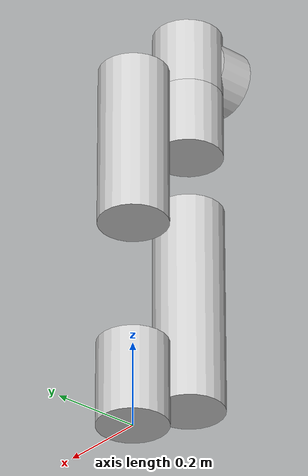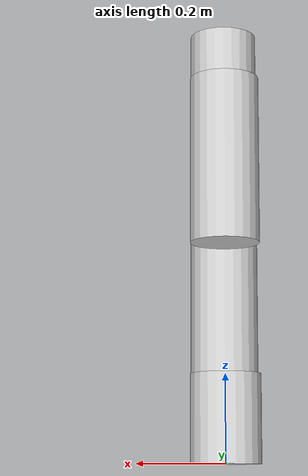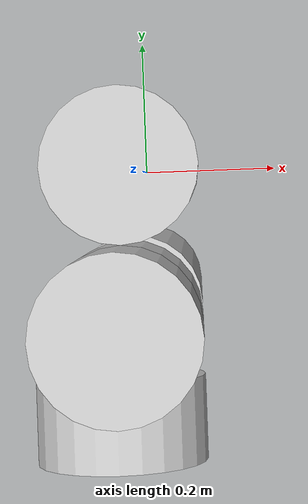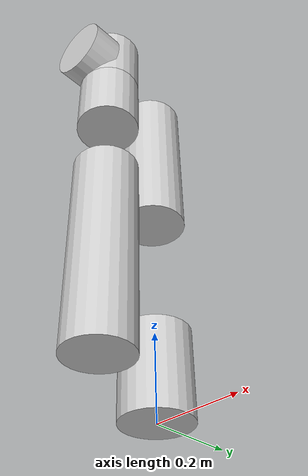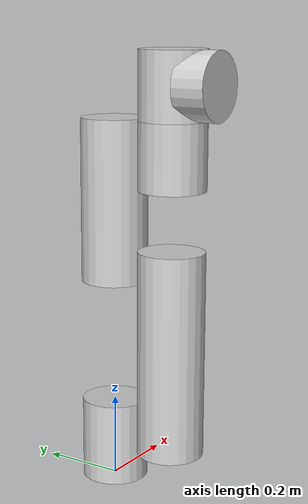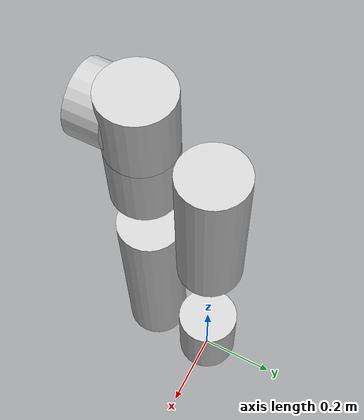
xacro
<?xml version="1.0"?>
<robot xmlns:xacro="http://www.ros.org/wiki/xacro" name="our_ur5">

<xacro:property name="radius" value="0.08" />

<!-- Links -->

	<link name="world"></link>

	<joint name="base_joint" type="continuous">
		<parent link="world"/>
		<child link="base"/>
		<axis xyz="0.0 0.0 1"/>
		<limit effort="3" velocity="1"/>
		<origin rpy="0 0 0" xyz="0 0 0"/>
	</joint>

	<link name="base">
		<visual>
			<origin xyz="0 0 0.1" rpy="0 0 0"/>
			<geometry>
				<cylinder radius="${radius}" length="0.2"/>
			</geometry>
			<material name="gray">
				<color rgba="0.8 0.8 0.8 1.0"/>
			</material>
		</visual>
	</link>

	<joint name="base_shoulder" type="revolute">
		<parent link="base"/>
		<child link="shoulder"/>
		<axis xyz="0.0 1 0.0"/>
		<limit lower="-${pi}" upper="${pi}" effort="100.0" velocity="100.0"/>
		<origin rpy="0 0 0" xyz="0 -${radius*2} 0.0892"/>
	</joint>

	<link name="shoulder">
		<visual>
			<origin xyz="0 0 ${0.5/2}" rpy="0 0 0"/>
			<geometry>
				<cylinder radius="${radius}" length="0.5"/>
			</geometry>
			<material name="gray">
				<color rgba="0.8 0.8 0.8 1.0"/>
			</material>
		</visual>
	</link>

	<joint name="shoulder_elbow" type="revolute">
		<parent link="shoulder"/>
		<child link="elbow"/>
		<axis xyz="0.0 1 0.0"/>
		<limit lower="-${pi}" upper="${pi}" effort="100.0" velocity="100.0"/>
		<origin rpy="0 0 0" xyz="0 ${radius*2} ${0.5-0.0892}"/>
	</joint>

	<link name="elbow">
		<visual>
			<origin xyz="0 0 ${0.392/2}" rpy="0 0 0"/>
			<geometry>
				<cylinder radius="${radius}" length="0.392"/>
			</geometry>
			<material name="gray">
				<color rgba="0.8 0.8 0.8 1.0"/>
			</material>
		</visual>
	</link>

	<joint name="elbow_wrist1" type="revolute">
		<parent link="elbow"/>
		<child link="wrist1"/>
		<axis xyz="0.0 1 0.0"/>
		<limit lower="-${pi}" upper="${pi}" effort="100.0" velocity="100.0"/>
		<origin rpy="0 0 0" xyz="0 ${-radius*2} ${0.392-radius}"/>
	</joint>

	<link name="wrist1">
		<visual>
			<origin xyz="0 0 0" rpy="0 0 0"/>
			<geometry>
				<cylinder radius="${radius}" length="${radius*2}"/>
			</geometry>
			<material name="gray">
				<color rgba="0.8 0.8 0.8 1.0"/>
			</material>
		</visual>
	</link>

	<joint name="wrist1_wrist2" type="revolute">
		<parent link="wrist1"/>
		<child link="wrist2"/>
		<axis xyz="0.0 0.0 1"/>
		<limit lower="-${pi}" upper="${pi}" effort="100.0" velocity="100.0"/>
		<origin rpy="0 0 0" xyz="0 0 ${radius*2}"/>
	</joint>

	<link name="wrist2">
		<visual>
			<origin xyz="0 0 0" rpy="0 0 0"/>
			<geometry>
				<cylinder radius="${radius}" length="${radius*2}"/>
			</geometry>
			<material name="gray">
				<color rgba="0.8 0.8 0.8 1.0"/>
			</material>
		</visual>
	</link>

	<joint name="wrist2_wrist3" type="revolute">
		<parent link="wrist2"/>
		<child link="wrist3"/>
		<axis xyz="0.0 1 0.0"/>
		<limit lower="-${pi}" upper="${pi}" effort="100.0" velocity="100.0"/>
		<origin rpy="0 0 0" xyz="0 ${-radius} 0"/>
	</joint>

	<link name="wrist3">
		<visual>
			<origin xyz="0 0 0" rpy="${pi/2} 0 0"/>
			<geometry>
				<cylinder radius="${radius}" length="${radius}"/>
			</geometry>
			<material name="gray">
				<color rgba="0.8 0.8 0.8 1.0"/>
			</material>
		</visual>
	</link>

</robot>
